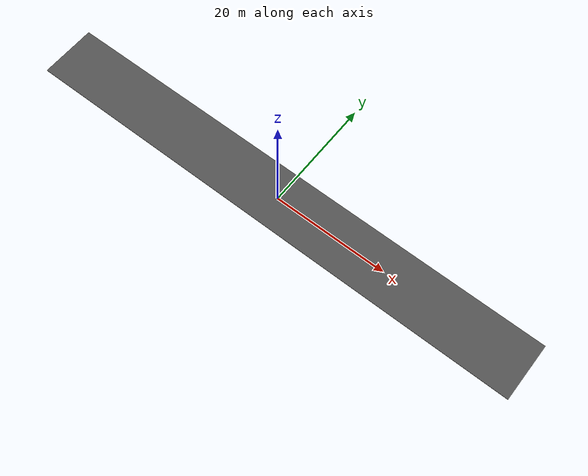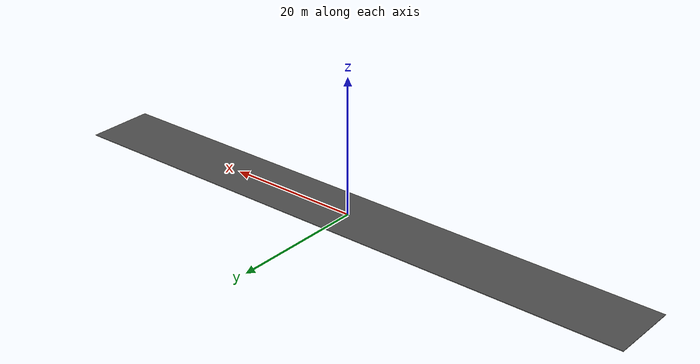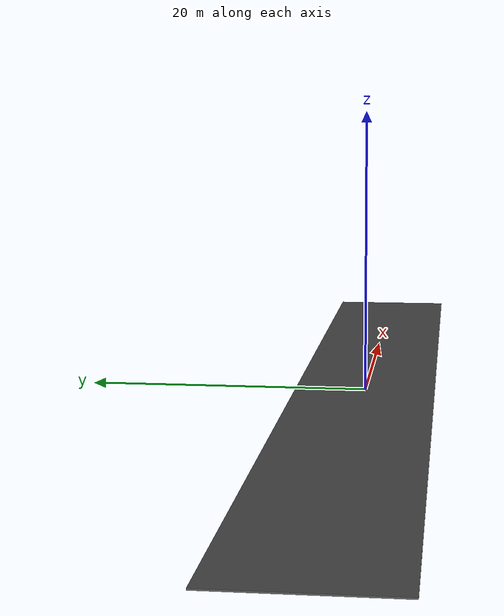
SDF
<?xml version="1.0" ?>
<sdf version="1.5">
  <model name="comps_road">
    <static>true</static>
    <link name="link">
      <collision name="collision">
        <geometry>
          <box>
            <size>90 10 .1</size>
          </box>
        </geometry>
      </collision>
      <visual name="visual">
        <cast_shadows>false</cast_shadows>
        <geometry>
          <box>
            <size>90 10 .1</size>
          </box>
        </geometry>
        <material>
          <script>
            <uri>model://comps_road/materials/scripts</uri>
            <uri>model://comps_road/materials/textures</uri>
            <name>comps_road</name>
          </script>
        </material>
      </visual>
    </link>
  </model>
</sdf>
